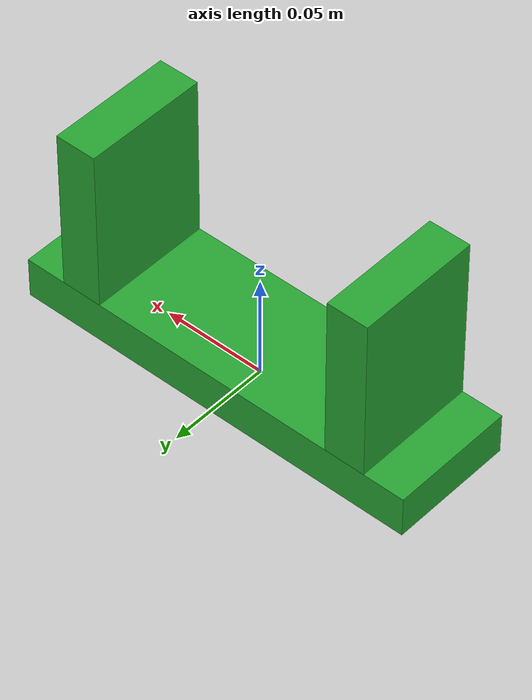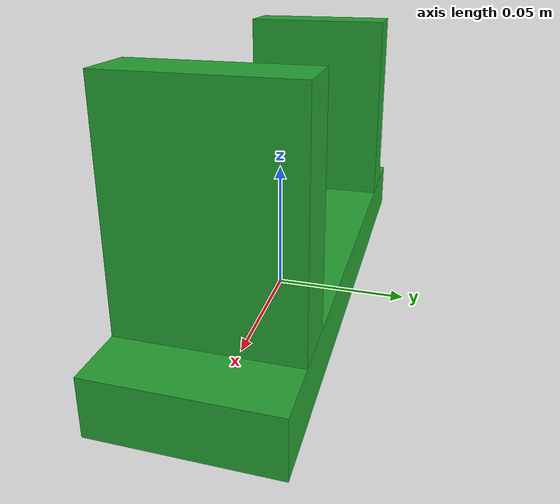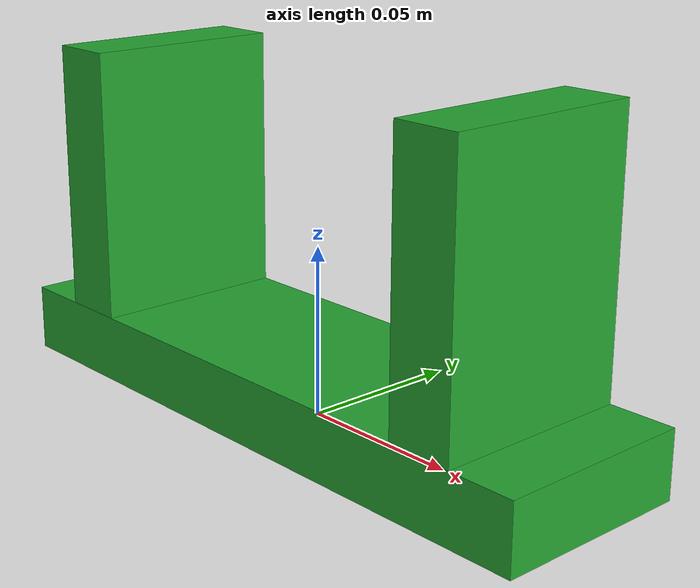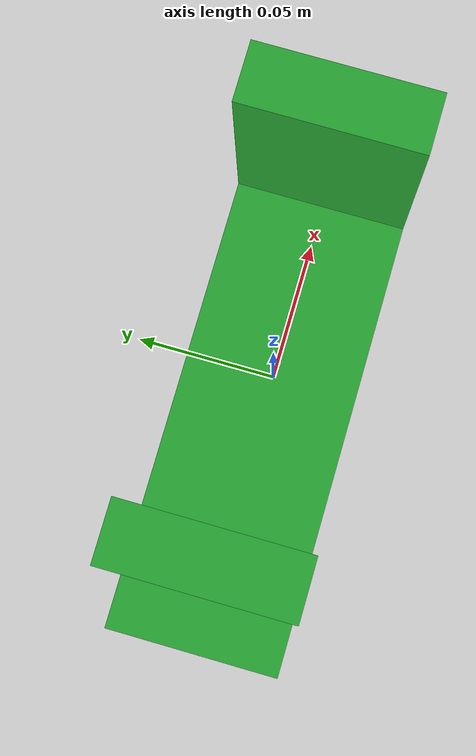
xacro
<?xml version="1.0" ?>
<robot xmlns:xacro="http://www.ros.org/xacro">

    <xacro:include filename="$(find growing_bot)/urdf/macros.xacro" />

    <xacro:property name="gripper_base_mass" value="0.2" />
    <xacro:property name="gripper_finger_mass" value="0.05" />

    <link name="gripper_base_link">
        <visual>
            <geometry>
                <box size="0.2 0.06 0.02" />
            </geometry>
            <material name="dark_green" />
            <origin xyz="0 0 0.01" rpy="0 0 0" />
        </visual>
        <collision>
            <geometry>
                <box size="0.2 0.06 0.02" />
            </geometry>
            <origin xyz="0 0 0.01" rpy="0 0 0" />
        </collision>
        <inertial>
            <origin xyz="0 0 0.01" rpy="0 0 0" />
            <mass value="${gripper_base_mass}" />
            <xacro:box_inertia m="${gripper_base_mass}" x="0.2" y="0.06" z="0.02" />
        </inertial>
    </link>

    <link name="gripper_left_finger_link">
        <visual>
            <geometry>
                <box size="0.02 0.06 0.08" />
            </geometry>
            <material name="light_green" />
            <origin xyz="0 0 0.04" rpy="0 0 0" />
        </visual>
        <collision>
            <geometry>
                <box size="0.02 0.06 0.08" />
            </geometry>
            <origin xyz="0 0 0.04" rpy="0 0 0" />
        </collision>
        <inertial>
            <origin xyz="0 0 0.04" rpy="0 0 0" />
            <mass value="${gripper_finger_mass}" />
            <xacro:box_inertia m="${gripper_finger_mass}" x="0.02" y="0.06" z="0.08" />
        </inertial>
    </link>

    <link name="gripper_right_finger_link">
        <visual>
            <geometry>
                <box size="0.02 0.06 0.08" />
            </geometry>
            <material name="light_green" />
            <origin xyz="0 0 0.04" rpy="0 0 0" />
        </visual>
        <collision>
            <geometry>
                <box size="0.02 0.06 0.08" />
            </geometry>
            <origin xyz="0 0 0.04" rpy="0 0 0" />
        </collision>
        <inertial>
            <origin xyz="0 0 0.04" rpy="0 0 0" />
            <mass value="${gripper_finger_mass}" />
            <xacro:box_inertia m="${gripper_finger_mass}" x="0.02" y="0.06" z="0.08" />
        </inertial>
    </link>

    <joint name="gripper_left_finger_joint" type="prismatic">
        <parent link="gripper_base_link" />
        <child link="gripper_left_finger_link" />
        <origin xyz="-0.07 0 0.02" rpy="0 0 0" />
        <axis xyz="1 0 0" />
        <!-- lower slightly below 0: sim rest pose can be ~-1e-16 -->
        <limit effort="1000.0" velocity="1.0" lower="-0.001" upper="0.06" />
        <dynamics damping="0.2" friction="0.1" />
    </joint>

    <joint name="gripper_right_finger_joint" type="prismatic">
        <parent link="gripper_base_link" />
        <child link="gripper_right_finger_link" />
        <origin xyz="0.07 0 0.02" rpy="0 0 0" />
        <axis xyz="1 0 0" />
        <limit effort="1000.0" velocity="1.0" lower="-0.06" upper="0.001" />
        <dynamics damping="0.2" friction="0.1" />
    </joint>

</robot>

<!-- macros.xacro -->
<robot xmlns:xacro="http://www.ros.org/wiki/xacro" name="growing_bot">

    <!--................................ INERTIA MATRICES .............................. -->

    <xacro:macro name="cylinder_inertia" params="m r h">
        <inertia ixx="${m * (3 * r * r + h * h) / 12}" ixy="0" ixz="0" iyy="${m * (3 * r * r + h * h) / 12}" iyz="0" izz="${m * r * r / 2}" />
    </xacro:macro>

    <xacro:macro name="box_inertia" params="m x y z">
        <inertia ixx="${m * (y * y + z * z) / 12}" ixy="0" ixz="0" iyy="${m * (x * x + z * z) / 12}" iyz="0" izz="${m * (y * y + x * x) / 12}" />
    </xacro:macro>

    <xacro:macro name="sphere_inertia" params="m r">
        <inertia ixx="${2 * m * r * r / 5}" ixy="0" ixz="0" iyy="${2 * m * r * r / 5}" iyz="0" izz="${2 * m * r * r / 5}" />
    </xacro:macro>

</robot>
